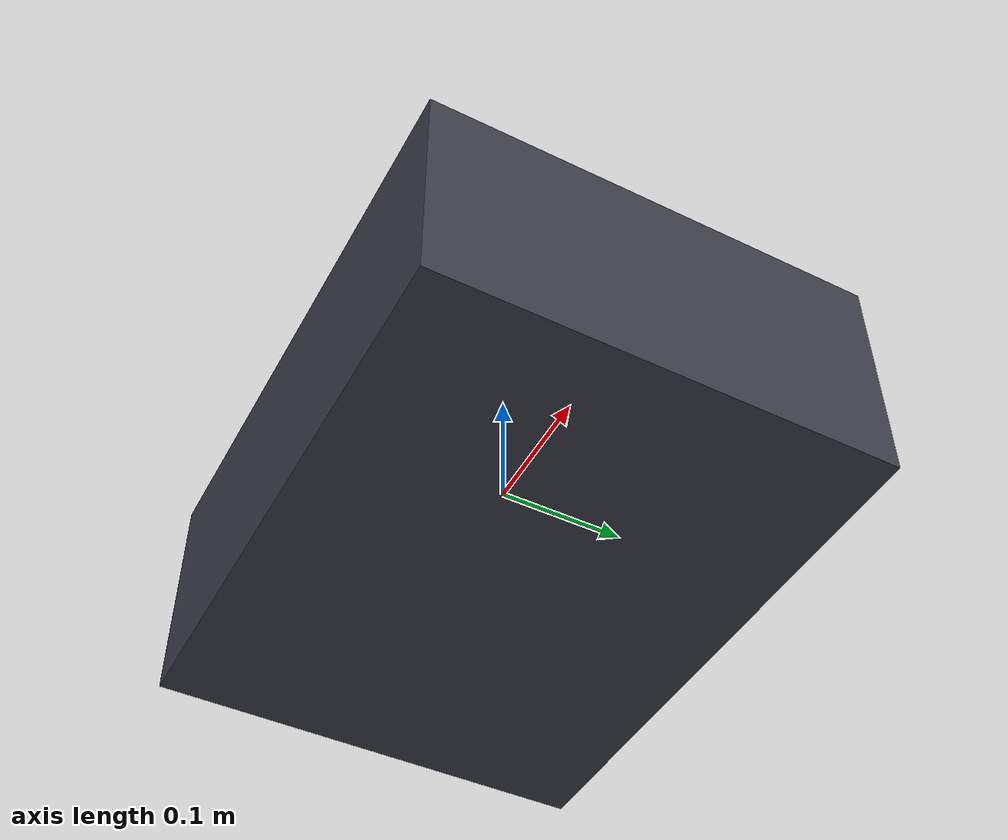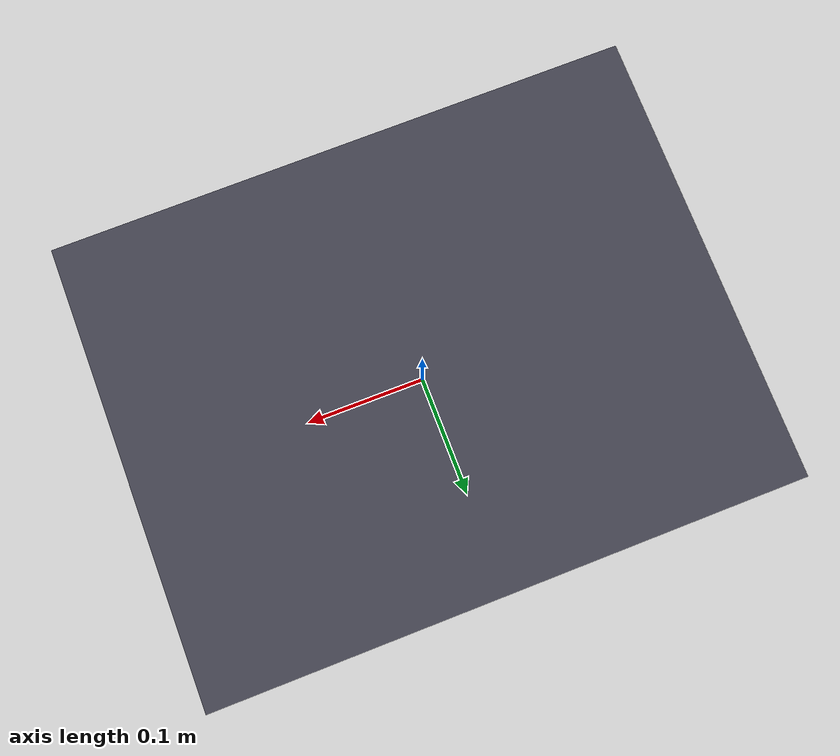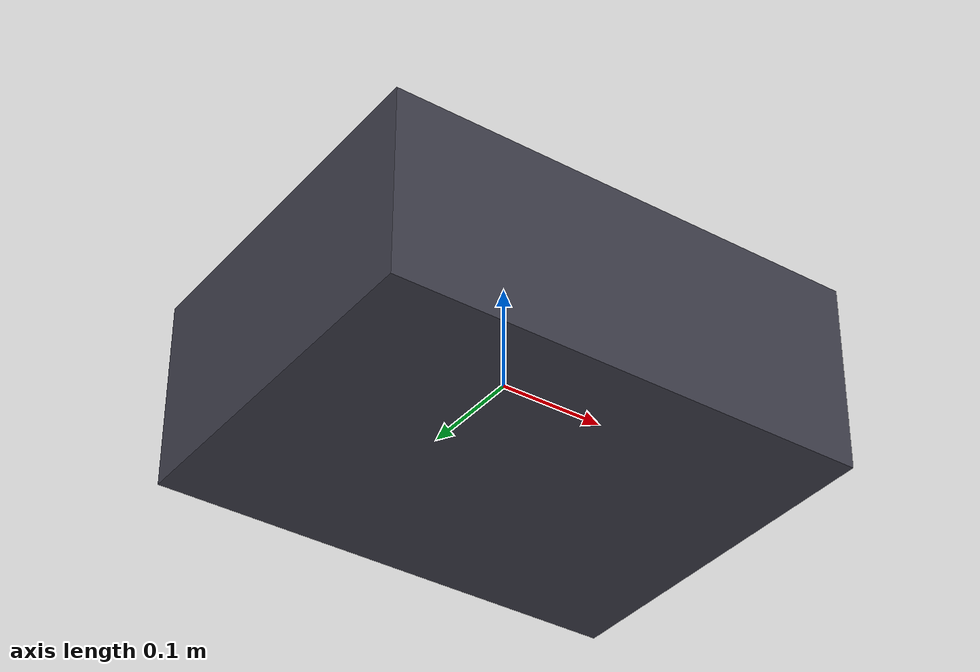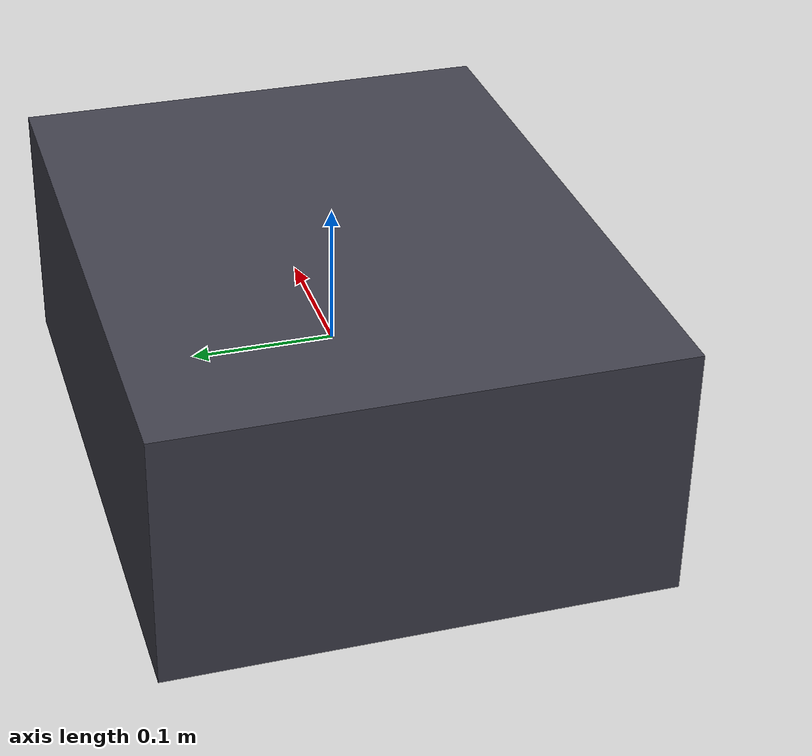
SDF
<?xml version="1.0"?>
<sdf version="1.9">
  <model name="marv_auv_simple">
    <static>false</static>
    <link name="base_link">
      <pose>0 0 0 0 0 0</pose>
      <inertial>
        <mass>12.0</mass>
        <inertia>
          <ixx>0.2</ixx><iyy>0.3</iyy><izz>0.4</izz>
        </inertia>
      </inertial>
      <visual name="hull">
        <geometry>
          <box><size>0.45 0.35 0.18</size></box>
        </geometry>
        <material>
          <ambient>0.15 0.15 0.18 1</ambient>
          <diffuse>0.25 0.25 0.30 1</diffuse>
        </material>
      </visual>
      <collision name="hull_collision">
        <geometry>
          <box><size>0.45 0.35 0.18</size></box>
        </geometry>
      </collision>
      <sensor name="explore_hd_camera" type="camera">
        <pose>0.22 0 0.02 0 0 0</pose>
        <always_on>true</always_on>
        <update_rate>30</update_rate>
        <visualize>true</visualize>
        <topic>explore_hd</topic>
        <camera>
          <horizontal_fov>1.3962634</horizontal_fov>
          <image>
            <width>1280</width>
            <height>720</height>
            <format>R8G8B8</format>
          </image>
          <clip>
            <near>0.15</near>
            <far>40</far>
          </clip>
        </camera>
      </sensor>
    </link>
  </model>
</sdf>
